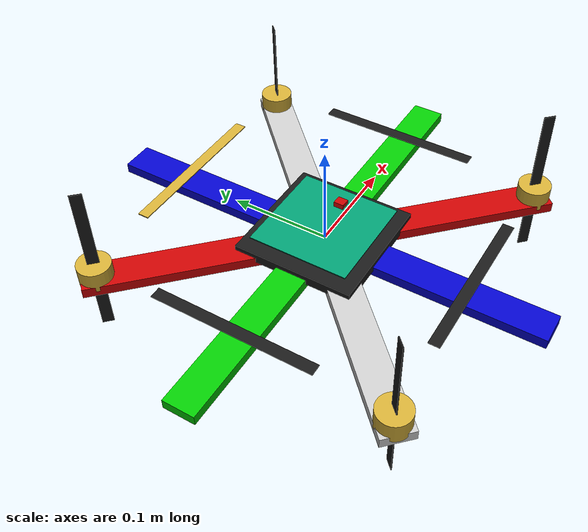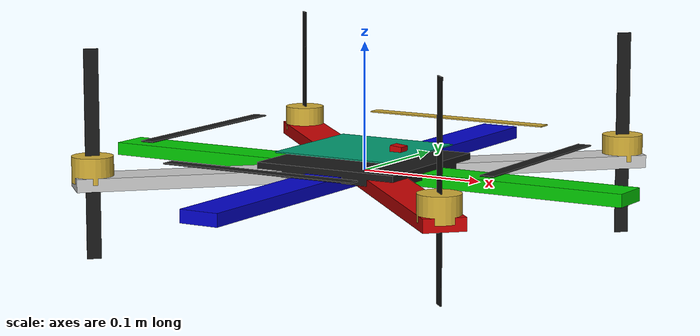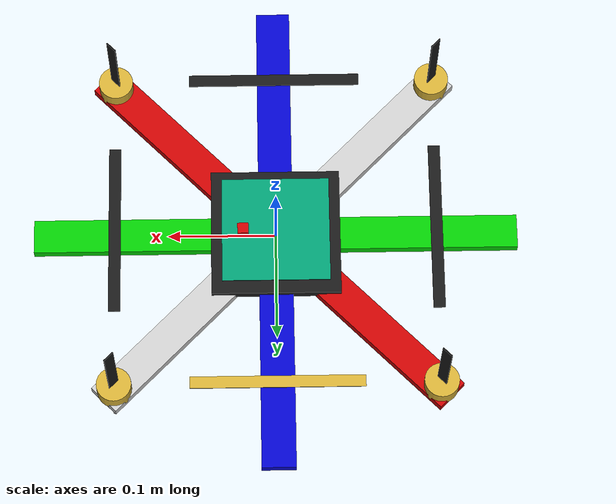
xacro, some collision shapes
<?xml version="1.0"?>
<robot xmlns:xacro="http://www.ros.org/wiki/xacro" name="rov">
	<xacro:property name="width" value="0.0315" />
	<xacro:property name="length" value="0.45" />
	<xacro:property name="height" value="0.01" />
	<xacro:property name="mass_fr" value="0.165" />
	<xacro:property name="mass_pr" value="0.0055" />
	<xacro:property name="pi_value" value="3.14159263" />
	<xacro:property name="radiusp" value="0.20" />
	<xacro:property name="prop_loc" value="0.15909" />
	<xacro:include filename="$(find mate_simulation)/urdf/material.xacro" />
	<xacro:include filename="$(find mate_simulation)/urdf/rov.gazebo" />
	<!-- Define inertial macro -->
	<xacro:macro name="default_inertial" params="mass p ix_value iy_value iz_value" >
		<inertial>
			<origin xyz="0 0 0" rpy="0 0 ${p}" />
			<mass value="${mass}" />
			<inertia ixx="${ix_value}" ixy="0" ixz="0"
					 iyy="${iy_value}" iyz="0" izz="${iz_value}" />
		</inertial>
	</xacro:macro>
	<link name="base_link1">
		<visual>
			<origin xyz="0 0 0" rpy="0 0 ${pi_value/4}" />

			<geometry>
				<box size="${width} ${length} ${height}" />
			</geometry>

			<material name="red" />
		</visual>

		<collision>
			<origin xyz="0 0 0" rpy="0 0 ${pi_value/4}" />

			<geometry>
				<box size="${width} ${length} ${height}" />
			</geometry>
		</collision>

		<xacro:default_inertial mass="${mass_fr}" p="${pi_value/4}" ix_value="${0.04989/2}" iy_value="${0.04989/2}" iz_value="${0.24057/2}" />
	</link>
	<link name="base_link2">
		<visual>
			<origin xyz="0 0 0" rpy="0 0 ${-pi_value/4}" />

			<geometry>
				<box size="${width} ${length} ${height}" />
			</geometry>

			<material name="white" />
		</visual>

		<collision>
			<origin xyz="0 0 0" rpy="0 0 ${-pi_value/4}" />

			<geometry>
				<box size="${width} ${length} ${height}" />
			</geometry>
		</collision>

		<xacro:default_inertial mass="${mass_fr}" p="${-pi_value/4}" ix_value="${0.04989/2}" iy_value="${0.04989/2}" iz_value="${0.24057/2}" />
	</link>
	<link name="base_link3">
		<visual>
			<origin xyz="0 0 0" rpy="0 0 0" />

			<geometry>
				<box size="${width} ${length} ${height}" />
			</geometry>

			<material name="blue" />
		</visual>

		<collision>
			<origin xyz="0 0 0" rpy="0 0 0" />

			<geometry>
				<box size="${width} ${length} ${height}" />
			</geometry>
		</collision>

		<xacro:default_inertial mass="${mass_fr}" p="${pi_value/4}" ix_value="${0.04989/2}" iy_value="${0.04989/2}" iz_value="${0.24057/2}" />
	</link>
	<link name="base_link4">
		<visual>
			<origin xyz="0 0 0" rpy="0 0 ${pi_value/2}" />

			<geometry>
				<box size="${width} ${length} ${height}" />
			</geometry>

			<material name="green" />
		</visual>

		<collision>
			<origin xyz="0 0 0" rpy="0 0 ${pi_value/2}" />

			<geometry>
				<box size="${width} ${length} ${height}" />
			</geometry>
		</collision>

		<xacro:default_inertial mass="${mass_fr}" p="${-pi_value/4}" ix_value="${0.04989/2}" iy_value="${0.04989/2}" iz_value="${0.24057/2}" />
	</link>
	<link name="plate1">
		<visual>
			<origin xyz="0 0 0" rpy="0 0 0" />

			<geometry>
				<box size="${0.12} ${0.12} ${0.01}" />
			</geometry>

			<material name="black" />
		</visual>

		<collision>
			<origin xyz="0 0 0" rpy="0 0 0" />

			<geometry>
				<box size="${0.12} ${0.12} ${0.01}" />
			</geometry>
		</collision>

		<xacro:default_inertial mass="${0.01}" p="${0}" ix_value="${0}" iy_value="${0}" iz_value="${2.4-5}" />
	</link>
	<link name="plate2">
		<visual>
			<origin xyz="0 0 0" rpy="0 0 0" />

			<geometry>
				<box size="${0.05} ${0.03} ${0.005}" />
			</geometry>

			<material name="blue" />
		</visual>

		<collision>
			<origin xyz="0 0 0" rpy="0 0 0" />

			<geometry>
				<box size="${0.05} ${0.03} ${0.005}" />
			</geometry>
		</collision>

		<xacro:default_inertial mass="${0.001}" p="${0}" ix_value="${0}" iy_value="${0}" iz_value="${8.1666-7}" />
	</link>
	<link name="cyl1">
		<visual>
			<origin xyz="0 0 0" rpy="0 0 0" />

			<geometry>
				<cylinder radius="0.016" length="0.02" />
			</geometry>

			<material name="golden" />
		</visual>

		<collision>
			<origin xyz="0 0 0" rpy="0 0 0" />

			<geometry>
				<cylinder radius="0.016" length="0.02" />
			</geometry>
		</collision>

		<xacro:default_inertial mass="${0.01}" p="${0}" ix_value="${8.95e-6}" iy_value="${8.95e-6}" iz_value="${2.23e-4}" />
	</link>
	<link name="cyl2">
		<visual>
			<origin xyz="0 0 0" rpy="0 0 0" />

			<geometry>
				<cylinder radius="0.016" length="0.02" />
			</geometry>

			<material name="golden" />
		</visual>

		<collision>
			<origin xyz="0 0 0" rpy="0 0 0" />

			<geometry>
				<cylinder radius="0.016" length="0.02" />
			</geometry>
		</collision>

		<xacro:default_inertial mass="${0.01}" p="${0}" ix_value="${8.95e-6}" iy_value="${8.95e-6}" iz_value="${2.23e-4}" />
	</link>
	<link name="cyl3">
		<visual>
			<origin xyz="0 0 0" rpy="0 0 0" />

			<geometry>
				<cylinder radius="0.016" length="0.02" />
			</geometry>

			<material name="golden" />
		</visual>

		<collision>
			<origin xyz="0 0 0" rpy="0 0 0" />

			<geometry>
				<cylinder radius="0.016" length="0.02" />
			</geometry>
		</collision>

		<xacro:default_inertial mass="${0.01}" p="${0}" ix_value="${8.95e-6}" iy_value="${8.95e-6}" iz_value="${2.23e-4}" />
	</link>
	<link name="cyl4">
		<visual>
			<origin xyz="0 0 0" rpy="0 0 0" />

			<geometry>
				<cylinder radius="0.016" length="0.02" />
			</geometry>

			<material name="golden" />
		</visual>

		<collision>
			<origin xyz="0 0 0" rpy="0 0 0" />

			<geometry>
				<cylinder radius="0.016" length="0.02" />
			</geometry>
		</collision>

		<xacro:default_inertial mass="${0.01}" p="${0}" ix_value="${8.95e-6}" iy_value="${8.95e-6}" iz_value="${2.23e-4}" />
	</link>
	<link name="arduino">
		<visual>
			<origin xyz="0 0 0" rpy="0 0 0" />
			<geometry>
				<mesh filename="package://mate_simulation/meshes/22V10.dae" scale="0.005 0.005 0.005" />
			</geometry>
		</visual>
		<collision>
			<origin xyz="0 0 0" rpy="0 0 0" />
			<geometry>
				<box size="0.1 0.1 0.001" />
			</geometry>
		</collision>
		<xacro:default_inertial mass="${0.05}" p="${0}" ix_value="${0}" iy_value="${0}" iz_value="${8.33333e-5}" />
	</link>
	<link name="camera_link">
		<visual>
			<origin xyz="0 0 0" rpy="0 0 0" />
			<geometry>
				<box size="0.01 0.01 0.01" />
			</geometry>

			<material name="red" />

		</visual>

		<collision>
			<origin xyz="0 0 0" rpy="0 0 0" />
			<geometry>
				<box size="0.01 0.01 0.01" />
			</geometry>
		</collision>

		<xacro:default_inertial mass="${1e-5}" p="${0}" ix_value="${1e-6}" iy_value="${1e-6}" iz_value="${1e-6}" />
	</link>
	<!-- Propellers of the quad: fr, fl, br, bl -->
	<link name="prop_front_right">
		<visual>
			<origin xyz="0 0 0" rpy="0 0 0" />

			<geometry>
				<box size="${0.03302/3} ${radiusp*0.8} ${0.001}" />
			</geometry>

			<material name="black" />
		</visual>

		<collision>
			<origin xyz="0 0 0" rpy="0 0 0" />

			<geometry>
				<box size="${0.03302/3} ${radiusp*0.8} ${0.001}" />
			</geometry>
		</collision>

		<xacro:default_inertial mass="${mass_pr}" p="${0}" ix_value="${0}" iy_value="${0}" iz_value="${4.42448e-5}" />
	</link>

	<link name="prop_front_left">
		<visual>
			<origin xyz="0 0 0" rpy="0 0 0" />

			<geometry>
				<box size="${0.03302/3} ${radiusp*0.8} ${0.001}" />
			</geometry>

			<material name="black"/>
		</visual>

		<collision>
			<origin xyz="0 0 0" rpy="0 0 0" />

			<geometry>
				<box size="${0.03302/3} ${radiusp*0.8} ${0.001}" />
			</geometry>
		</collision>

		<xacro:default_inertial mass="${mass_pr}" p="${0}"  ix_value="${0}" iy_value="${0}" iz_value="${4.42448e-5}" />

	</link>

	<link name="prop_back_right">
		<visual>
			<origin xyz="0 0 0" rpy="0 0 0" />

			<geometry>
				<box size="${0.03302/3} ${radiusp*0.8} ${0.001}" />
			</geometry>

			<material name="black"/>
		</visual>

		<collision>
			<origin xyz="0 0 0" rpy="0 0 0" />

			<geometry>
				<box size="${0.03302/3} ${radiusp*0.8} ${0.001}" />
			</geometry>
		</collision>

		<xacro:default_inertial mass="${mass_pr}" p="${0}"  ix_value="${0}" iy_value="${0}" iz_value="${4.42448e-5}" />

	</link>

	<link name="prop_back_left">
		<visual>
			<origin xyz="0 0 0" rpy="0 0 0" />

			<geometry>
				<box size="${0.03302/3} ${radiusp*0.8} ${0.001}" />
			</geometry>

			<material name="black"/>
		</visual>

		<collision>
			<origin xyz="0 0 0" rpy="0 0 0" />

			<geometry>
				<box size="${0.03302/3} ${radiusp*0.8} ${0.001}" />
			</geometry>
		</collision>

		<xacro:default_inertial mass="${mass_pr}" p="${0}"  ix_value="${0}" iy_value="${0}" iz_value="${4.42448e-5}" />

	</link>

	<link name="prop_front_middle">
		<visual>
			<origin xyz="0 0 0" rpy="0 0 0" />

			<geometry>
				<box size="${0.03302/3} ${radiusp*0.8} ${0.001}" />
			</geometry>

			<material name="golden" />
		</visual>

		<collision>
			<origin xyz="0 0 0" rpy="0 0 0" />

			<geometry>
				<box size="${0.03302/3} ${radiusp*0.8} ${0.001}" />
			</geometry>
		</collision>

		<xacro:default_inertial mass="${mass_pr}" p="${0}" ix_value="${0}" iy_value="${0}" iz_value="${4.42448e-5}" />
	</link>

	<link name="prop_back_middle">
		<visual>
			<origin xyz="0 0 0" rpy="0 0 0" />

			<geometry>
				<box size="${0.03302/3} ${radiusp*0.8} ${0.001}" />
			</geometry>

			<material name="black" />
		</visual>

		<collision>
			<origin xyz="0 0 0" rpy="0 0 0" />

			<geometry>
				<box size="${0.03302/3} ${radiusp*0.8} ${0.001}" />
			</geometry>
		</collision>

		<xacro:default_inertial mass="${mass_pr}" p="${0}" ix_value="${0}" iy_value="${0}" iz_value="${4.42448e-5}" />
	</link>

	<link name="prop_right_middle">
		<visual>
			<origin xyz="0 0 0" rpy="0 0 0" />

			<geometry>
				<box size="${0.03302/3} ${radiusp*0.8} ${0.001}" />
			</geometry>

			<material name="black" />
		</visual>

		<collision>
			<origin xyz="0 0 0" rpy="0 0 0" />

			<geometry>
				<box size="${0.03302/3} ${radiusp*0.8} ${0.001}" />
			</geometry>
		</collision>

		<xacro:default_inertial mass="${mass_pr}" p="${0}" ix_value="${0}" iy_value="${0}" iz_value="${4.42448e-5}" />
	</link>

	<link name="prop_left_middle">
		<visual>
			<origin xyz="0 0 0" rpy="0 0 0" />

			<geometry>
				<box size="${0.03302/3} ${radiusp*0.8} ${0.001}" />
			</geometry>

			<material name="black" />
		</visual>

		<collision>
			<origin xyz="0 0 0" rpy="0 0 0" />

			<geometry>
				<box size="${0.03302/3} ${radiusp*0.8} ${0.001}" />
			</geometry>
		</collision>

		<xacro:default_inertial mass="${mass_pr}" p="${0}" ix_value="${0}" iy_value="${0}" iz_value="${4.42448e-5}" />
	</link>
<!-- Define the joint between the arms of the frame -->
	<joint name="center" type="fixed">
		<parent link="base_link1" />
		<child link="base_link2" />

		<origin xyz="0 0 0" rpy="0 0 0"/>
		<axis xyz="0 0 1" />
	</joint>
<!-- Define the joint between the arms of the frame 2 -->
	<joint name="center2" type="fixed">
		<parent link="base_link2" />
		<child link="base_link3" />

		<origin xyz="0 0 0" rpy="0 0 0"/>
		<axis xyz="0 0 1" />
	</joint>
<!-- Define the joint between the arms of the frame 3 -->
	<joint name="center3" type="fixed">
		<parent link="base_link3" />
		<child link="base_link4" />

		<origin xyz="0 0 0" rpy="0 0 0"/>
		<axis xyz="0 0 1" />
	</joint>
<!-- Define joint between prop fr and frame -->
	<joint name="joint_front_right_prop" type="continuous">
		<parent link="base_link2" />
		<child link="prop_front_right" />
		<origin xyz="${prop_loc - 0.01} ${prop_loc - 0.01} 0.021" rpy="${pi_value/2} 0 ${pi_value/4}"/>
		<axis xyz="0 0 1" />
	</joint>
<!-- Define joint between prop fl and frame -->
	<joint name="joint_front_left_prop" type="continuous">
		<parent link="base_link1" />
		<child link="prop_front_left" />
		<origin xyz="${-prop_loc + 0.01} ${prop_loc - 0.01} 0.021" rpy="${pi_value/2} 0 ${3*pi_value/4}" />
		<axis xyz="0 0 1" />
	</joint>
<!-- Define joint between prop br and frame -->
	<joint name="joint_back_right_prop" type="continuous">
		<parent link="base_link1" />
		<child link="prop_back_right" />
		<origin xyz="${prop_loc - 0.01} ${-prop_loc + 0.01} 0.021" rpy="${pi_value/2} 0 ${-pi_value/4}" />
		<axis xyz="0 0 1" />
	</joint>
<!-- Define joint between prop bl and frame -->
	<joint name="joint_back_left_prop" type="continuous">
		<parent link="base_link2" />
		<child link="prop_back_left" />
		<origin xyz="${-prop_loc + 0.01} ${-prop_loc + 0.01} 0.021" rpy="${-pi_value/2} 0 ${pi_value/4}" />
		<axis xyz="0 0 1" />
	</joint>
<!-- Define joint between prop fm and frame -->
	<joint name="joint_front_middle_prop" type="continuous">
		<parent link="base_link3" />
		<child link="prop_front_middle" />
		<origin xyz="0 ${prop_loc - 0.01} 0.021" rpy="0 0 ${pi_value/2}"/>
		<axis xyz="0 0 1" />
	</joint>
<!-- Define joint between prop bm and frame -->
	<joint name="joint_back_middle_prop" type="continuous">
		<parent link="base_link3" />
		<child link="prop_back_middle" />
		<origin xyz="0 ${-prop_loc + 0.01} 0.021" rpy="0 0 ${-pi_value/2}" />
		<axis xyz="0 0 1" />
	</joint>
<!-- Define joint between prop rm and frame -->
	<joint name="joint_right_middle_prop" type="continuous">
		<parent link="base_link4" />
		<child link="prop_right_middle" />
		<origin xyz="${prop_loc - 0.01} 0 0.021" rpy="0 0 0" />
		<axis xyz="0 0 1" />
	</joint>
<!-- Define joint between prop lm and frame -->
	<joint name="joint_left_middle_prop" type="continuous">
		<parent link="base_link4" />
		<child link="prop_left_middle" />
		<origin xyz="${-prop_loc + 0.01} 0 0.021" rpy="0 0 ${pi_value}" />
		<axis xyz="0 0 1" />
	</joint>
<!-- Define joint between plate1 and frame -->
	<joint name="joint_plate1_frame" type="fixed">
		<parent link="base_link2" />
		<child link="plate1" />
		<origin xyz="${0} ${0} 0.005" rpy="0 0 0" />
		<axis xyz="0 0 1" />
	</joint>
<!-- Define joint between plate1 and plate2 -->
	<joint name="joint_plate2_frame" type="fixed">
		<parent link="plate1" />
		<child link="plate2" />
		<origin xyz="${0} ${0} 0.007" rpy="0 0 0" />
		<axis xyz="0 0 1" />
	</joint>
<!-- Define joint between cyl1 and frame -->
	<joint name="joint_cyl1_frame" type="fixed">
		<parent link="base_link2" />
		<child link="cyl1" />
		<origin xyz="${prop_loc - 0.01} ${prop_loc - 0.01} 0.01" rpy="0 0 0" />
		<axis xyz="0 0 1" />
	</joint>
<!-- Define joint between cyl2 and frame -->
	<joint name="joint_cyl2_frame" type="fixed">
		<parent link="base_link2" />
		<child link="cyl2" />
		<origin xyz="${-prop_loc + 0.01} ${-prop_loc + 0.01} 0.01" rpy="0 0 0" />
		<axis xyz="0 0 1" />
	</joint>
<!-- Define joint between cyl3 and frame -->
	<joint name="joint_cyl3_frame" type="fixed">
		<parent link="base_link1" />
		<child link="cyl3" />
		<origin xyz="${-prop_loc + 0.01} ${prop_loc - 0.01} 0.01" rpy="0 0 0" />
		<axis xyz="0 0 1" />
	</joint>
<!-- Define joint between cyl4 and frame -->
	<joint name="joint_cyl4_frame" type="fixed">
		<parent link="base_link1" />
		<child link="cyl4" />
		<origin xyz="${prop_loc - 0.01} ${-prop_loc + 0.01} 0.01" rpy="0 0 0" />
		<axis xyz="0 0 1" />
	</joint>
<!-- Define joint between Arduino and frame -->
	<joint name="joint_arduino_frame" type="fixed">
		<parent link="plate2" />
		<child link="arduino" />
		<origin xyz="${0} ${0} 0.005" rpy="0 0 0" />
		<axis xyz="0 0 1" />
	</joint>
<!-- Define joint between Arduino and frame -->
	<joint name="joint_camera_frame" type="fixed">
		<parent link="plate2" />
		<child link="camera_link" />
		<origin xyz="${0.03} ${0} 0.005" rpy="0 0.1 0" />
		<axis xyz="0 0 1" />
	</joint>
<!-- Add transmission elements -->
	<transmission name="front_right_motor_joint" >
		<type>transmission_interface/SimpleTransmission</type>
		<joint name="joint_front_right_prop">
			<hardwareInterface>hardware_interface/VelocityJointInterface</hardwareInterface>
		</joint>
		<actuator name="BLDC_motor1">
			<hardwareInterface>hardware_interface/VelocityJointInterface</hardwareInterface>
			<mechanicalReduction>1</mechanicalReduction>
		</actuator>
	</transmission>

	<transmission name="front_left_motor_joint" >
		<type>transmission_interface/SimpleTransmission</type>
		<joint name="joint_front_left_prop">
			<hardwareInterface>hardware_interface/VelocityJointInterface</hardwareInterface>
		</joint>
		<actuator name="BLDC_motor2">
			<hardwareInterface>hardware_interface/VelocityJointInterface</hardwareInterface>
			<mechanicalReduction>1</mechanicalReduction>
		</actuator>
	</transmission>

	<transmission name="back_right_motor_joint" >
		<type>transmission_interface/SimpleTransmission</type>
		<joint name="joint_back_right_prop">
			<hardwareInterface>hardware_interface/VelocityJointInterface</hardwareInterface>
		</joint>
		<actuator name="BLDC_motor3">
			<hardwareInterface>hardware_interface/VelocityJointInterface</hardwareInterface>
			<mechanicalReduction>1</mechanicalReduction>
		</actuator>
	</transmission>

	<transmission name="back_left_motor_joint" >
		<type>transmission_interface/SimpleTransmission</type>
		<joint name="joint_back_left_prop">
			<hardwareInterface>hardware_interface/VelocityJointInterface</hardwareInterface>
		</joint>
		<actuator name="BLDC_motor4">
			<hardwareInterface>hardware_interface/VelocityJointInterface</hardwareInterface>
			<mechanicalReduction>1</mechanicalReduction>
		</actuator>
	</transmission>

	<transmission name="front_middle_motor_joint" >
		<type>transmission_interface/SimpleTransmission</type>
		<joint name="joint_front_middle_prop">
			<hardwareInterface>hardware_interface/VelocityJointInterface</hardwareInterface>
		</joint>
		<actuator name="BLDC_motor5">
			<hardwareInterface>hardware_interface/VelocityJointInterface</hardwareInterface>
			<mechanicalReduction>1</mechanicalReduction>
		</actuator>
	</transmission>

	<transmission name="back_middle_motor_joint" >
		<type>transmission_interface/SimpleTransmission</type>
		<joint name="joint_back_middle_prop">
			<hardwareInterface>hardware_interface/VelocityJointInterface</hardwareInterface>
		</joint>
		<actuator name="BLDC_motor6">
			<hardwareInterface>hardware_interface/VelocityJointInterface</hardwareInterface>
			<mechanicalReduction>1</mechanicalReduction>
		</actuator>
	</transmission>

	<transmission name="right_middle_motor_joint" >
		<type>transmission_interface/SimpleTransmission</type>
		<joint name="joint_right_middle_prop">
			<hardwareInterface>hardware_interface/VelocityJointInterface</hardwareInterface>
		</joint>
		<actuator name="BLDC_motor7">
			<hardwareInterface>hardware_interface/VelocityJointInterface</hardwareInterface>
			<mechanicalReduction>1</mechanicalReduction>
		</actuator>
	</transmission>

	<transmission name="left_middle_motor_joint" >
		<type>transmission_interface/SimpleTransmission</type>
		<joint name="joint_left_middle_prop">
			<hardwareInterface>hardware_interface/VelocityJointInterface</hardwareInterface>
		</joint>
		<actuator name="BLDC_motor8">
			<hardwareInterface>hardware_interface/VelocityJointInterface</hardwareInterface>
			<mechanicalReduction>1</mechanicalReduction>
		</actuator>
	</transmission>

</robot>

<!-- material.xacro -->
<robot>

	<material name="white">
		<color rgba="0.8 0.8 0.8 1" />
	</material>

	<material name="black">
		<color rgba="0.1 0.1 0.1 1" />
	</material>

	<material name="red">
		<color rgba="0.8 0.01 0.01 1" />
	</material>

	<material name="blue">
		<color rgba="0.01 0.01 0.8 1" />
	</material>

	<material name="green">
		<color rgba="0.01 0.8 0.01 1" />
	</material>

	<material name="golden">
		<color rgba="${212/255} ${175/255} ${55/255} 1" />
	</material>

</robot>
